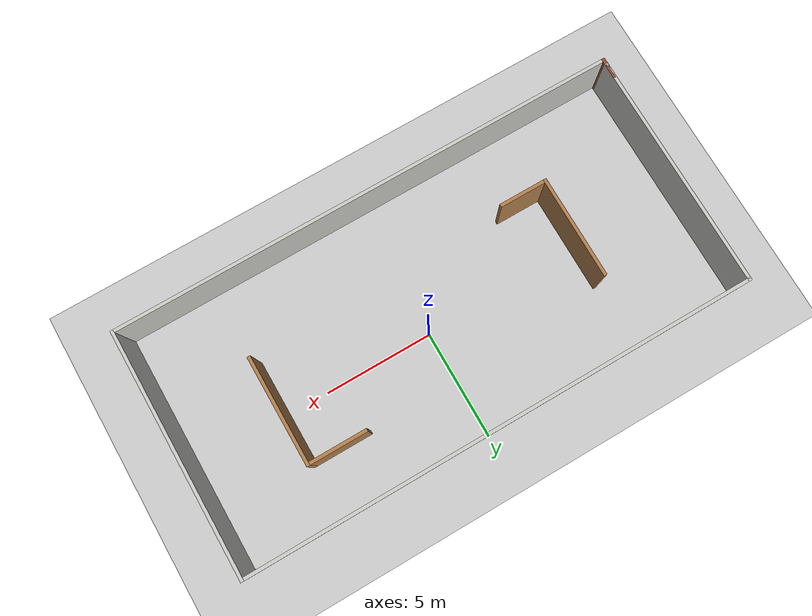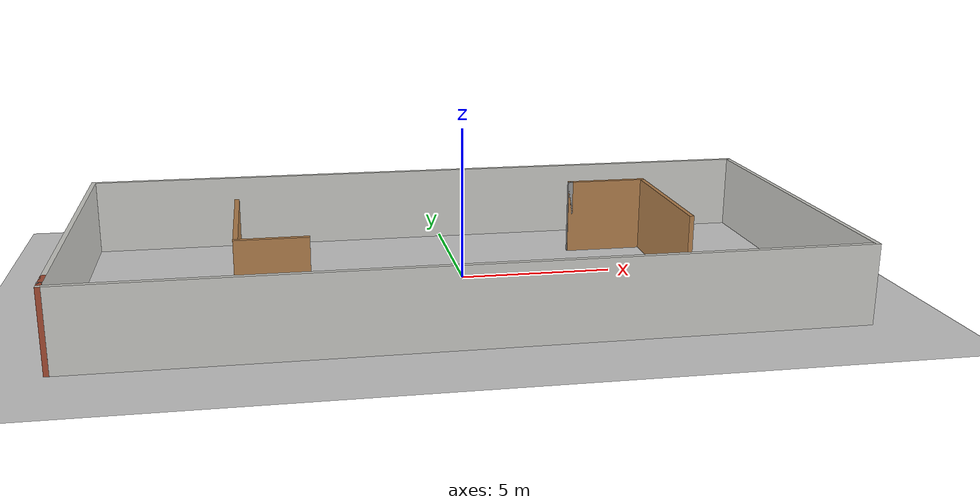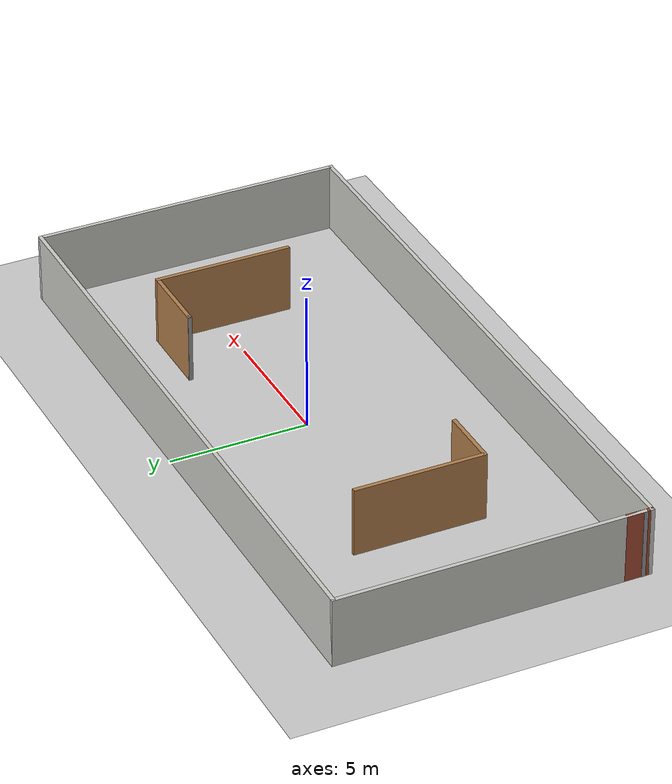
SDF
<sdf version="1.6">
 <world name="default">
  <light name="sun" type="directional">
   <pose>0 0 10 0 -0 0</pose>
   <diffuse>0.8 0.8 0.8 1</diffuse>
   <specular>0.2 0.2 0.2 1</specular>
   <attenuation>
    <range>1000</range>
    <constant>0.9</constant>
    <linear>0.01</linear>
    <quadratic>0.001</quadratic>
   </attenuation>
   <direction>-0.5 0.1 -0.9</direction>
  </light>
  <model name="ground_plane">
   <static>1</static>
   <link name="link">
    <collision name="collision">
     <geometry><plane><normal>0 0 1</normal><size>100 100</size></plane></geometry>
     <surface>
      <contact><collide_bitmask>65535</collide_bitmask></contact>
      <friction><ode><mu>100</mu><mu2>50</mu2></ode></friction>
     </surface>
    </collision>
    <visual name="visual">
     <cast_shadows>0</cast_shadows>
     <geometry><plane><normal>0 0 1</normal><size>100 100</size></plane></geometry>
     <material>
      <script><uri>file://media/materials/scripts/gazebo.material</uri><name>Gazebo/Grey</name></script>
     </material>
    </visual>
   </link>
  </model>
  <gravity>0 0 -9.8</gravity>
  <magnetic_field>6e-06 2.3e-05 -4.2e-05</magnetic_field>
  <atmosphere type="adiabatic"/>
  <physics name="default_physics" default="0" type="ode">
   <max_step_size>0.001</max_step_size>
   <real_time_factor>1</real_time_factor>
   <real_time_update_rate>1000</real_time_update_rate>
  </physics>
  <scene><ambient>0.4 0.4 0.4 1</ambient><background>0.7 0.7 0.7 1</background><shadows>1</shadows></scene>
  <audio><device>default</device></audio>
  <spherical_coordinates>
   <surface_model>EARTH_WGS84</surface_model>
   <latitude_deg>0</latitude_deg>
   <longitude_deg>0</longitude_deg>
   <elevation>0</elevation>
   <heading_deg>0</heading_deg>
  </spherical_coordinates>
  <model name="room">
   <pose>-0.559884 -0.644315 0 0 -0 0</pose>
   <link name="Wall_0">
    <collision name="Wall_0_Collision">
     <geometry><box><size>0.16 0.15 2.5</size></box></geometry>
     <pose>0 0 1.25 0 -0 0</pose>
    </collision>
    <visual name="Wall_0_Visual">
     <pose>0 0 1.25 0 -0 0</pose>
     <geometry><box><size>0.16 0.15 2.5</size></box></geometry>
     <material>
      <script><uri>file://media/materials/scripts/gazebo.material</uri><name>Gazebo/Grey</name></script>
      <ambient>1 1 1 1</ambient>
     </material>
     <meta><layer>0</layer></meta>
    </visual>
    <pose>-11.675 -5.3 0 0 -0 0</pose>
   </link>
   <link name="Wall_1">
    <collision name="Wall_1_Collision">
     <geometry><box><size>11 0.15 2.5</size></box></geometry>
     <pose>0 0 1.25 0 -0 0</pose>
    </collision>
    <visual name="Wall_1_Visual">
     <pose>0 0 1.25 0 -0 0</pose>
     <geometry><box><size>11 0.15 2.5</size></box></geometry>
     <material>
      <script><uri>file://media/materials/scripts/gazebo.material</uri><name>Gazebo/CeilingTiled</name></script>
      <ambient>1 1 1 1</ambient>
     </material>
     <meta><layer>0</layer></meta>
    </visual>
    <pose>-11.67 0.125 0 0 -0 1.5708</pose>
   </link>
   <link name="Wall_10">
    <collision name="Wall_10_Collision">
     <geometry><box><size>0.16 0.15 2.5</size></box></geometry>
     <pose>0 0 1.25 0 -0 0</pose>
    </collision>
    <visual name="Wall_10_Visual">
     <pose>0 0 1.25 0 -0 0</pose>
     <geometry><box><size>0.16 0.15 2.5</size></box></geometry>
     <material>
      <script><uri>file://media/materials/scripts/gazebo.material</uri><name>Gazebo/Grey</name></script>
      <ambient>1 1 1 1</ambient>
     </material>
     <meta><layer>0</layer></meta>
    </visual>
    <pose>4.81447 3.00626 0 0 -0 0</pose>
   </link>
   <link name="Wall_11">
    <collision name="Wall_11_Collision">
     <geometry><box><size>2.75 0.15 2.5</size></box></geometry>
     <pose>0 0 1.25 0 -0 0</pose>
    </collision>
    <visual name="Wall_11_Visual">
     <pose>0 0 1.25 0 -0 0</pose>
     <geometry><box><size>2.75 0.15 2.5</size></box></geometry>
     <material>
      <script><uri>file://media/materials/scripts/gazebo.material</uri><name>Gazebo/Wood</name></script>
      <ambient>1 0.764706 0.305882 1</ambient>
     </material>
     <meta><layer>0</layer></meta>
    </visual>
    <pose>6.11947 3.00626 0 0 -0 0</pose>
   </link>
   <link name="Wall_12">
    <collision name="Wall_12_Collision">
     <geometry><box><size>5 0.15 2.5</size></box></geometry>
     <pose>0 0 1.25 0 -0 0</pose>
    </collision>
    <visual name="Wall_12_Visual">
     <pose>0 0 1.25 0 -0 0</pose>
     <geometry><box><size>5 0.15 2.5</size></box></geometry>
     <material>
      <script><uri>file://media/materials/scripts/gazebo.material</uri><name>Gazebo/Wood</name></script>
      <ambient>1 0.764706 0.305882 1</ambient>
     </material>
     <meta><layer>0</layer></meta>
    </visual>
    <pose>7.41947 0.581263 0 0 -0 -1.5708</pose>
   </link>
   <link name="Wall_2">
    <collision name="Wall_2_Collision">
     <geometry><box><size>23.5 0.15 2.5</size></box></geometry>
     <pose>0 0 1.25 0 -0 0</pose>
    </collision>
    <visual name="Wall_2_Visual">
     <pose>0 0 1.25 0 -0 0</pose>
     <geometry><box><size>23.5 0.15 2.5</size></box></geometry>
     <material>
      <script><uri>file://media/materials/scripts/gazebo.material</uri><name>Gazebo/CeilingTiled</name></script>
      <ambient>1 1 1 1</ambient>
     </material>
     <meta><layer>0</layer></meta>
    </visual>
    <pose>0.005 5.55 0 0 -0 0</pose>
   </link>
   <link name="Wall_3">
    <collision name="Wall_3_Collision">
     <geometry><box><size>11.25 0.15 2.5</size></box></geometry>
     <pose>0 0 1.25 0 -0 0</pose>
    </collision>
    <visual name="Wall_3_Visual">
     <pose>0 0 1.25 0 -0 0</pose>
     <geometry><box><size>11.25 0.15 2.5</size></box></geometry>
     <material>
      <script><uri>file://media/materials/scripts/gazebo.material</uri><name>Gazebo/CeilingTiled</name></script>
      <ambient>1 1 1 1</ambient>
     </material>
     <meta><layer>0</layer></meta>
    </visual>
    <pose>11.68 -0 0 0 -0 -1.5708</pose>
   </link>
   <link name="Wall_4">
    <collision name="Wall_4_Collision">
     <geometry><box><size>23.5 0.15 2.5</size></box></geometry>
     <pose>0 0 1.25 0 -0 0</pose>
    </collision>
    <visual name="Wall_4_Visual">
     <pose>0 0 1.25 0 -0 0</pose>
     <geometry><box><size>23.5 0.15 2.5</size></box></geometry>
     <material>
      <script><uri>file://media/materials/scripts/gazebo.material</uri><name>Gazebo/CeilingTiled</name></script>
      <ambient>1 1 1 1</ambient>
     </material>
     <meta><layer>0</layer></meta>
    </visual>
    <pose>0.005 -5.55 0 0 -0 3.14159</pose>
   </link>
   <link name="Wall_5">
    <collision name="Wall_5_Collision">
     <geometry><box><size>1 0.15 2.5</size></box></geometry>
     <pose>0 0 1.25 0 -0 0</pose>
    </collision>
    <visual name="Wall_5_Visual">
     <pose>0 0 1.25 0 -0 0</pose>
     <geometry><box><size>1 0.15 2.5</size></box></geometry>
     <material>
      <script><uri>file://media/materials/scripts/gazebo.material</uri><name>Gazebo/Bricks</name></script>
      <ambient>1 1 1 1</ambient>
     </material>
     <meta><layer>0</layer></meta>
    </visual>
    <pose>-11.67 -5.125 0 0 -0 1.5708</pose>
   </link>
   <link name="Wall_7">
    <collision name="Wall_7_Collision">
     <geometry><box><size>4.75 0.15 2.5</size></box></geometry>
     <pose>0 0 1.25 0 -0 0</pose>
    </collision>
    <visual name="Wall_7_Visual">
     <pose>0 0 1.25 0 -0 0</pose>
     <geometry><box><size>4.75 0.15 2.5</size></box></geometry>
     <material>
      <script><uri>file://media/materials/scripts/gazebo.material</uri><name>Gazebo/Wood</name></script>
      <ambient>1 0.764706 0.305882 1</ambient>
     </material>
     <meta><layer>0</layer></meta>
    </visual>
    <pose>-6.69624 0.090984 0 0 -0 -1.5708</pose>
   </link>
   <link name="Wall_8">
    <collision name="Wall_8_Collision">
     <geometry><box><size>2.25 0.15 2.5</size></box></geometry>
     <pose>0 0 1.25 0 -0 0</pose>
    </collision>
    <visual name="Wall_8_Visual">
     <pose>0 0 1.25 0 -0 0</pose>
     <geometry><box><size>2.25 0.15 2.5</size></box></geometry>
     <material>
      <script><uri>file://media/materials/scripts/gazebo.material</uri><name>Gazebo/Wood</name></script>
      <ambient>1 0.764706 0.305882 1</ambient>
     </material>
     <meta><layer>0</layer></meta>
    </visual>
    <pose>-5.64624 -2.20902 0 0 -0 0</pose>
   </link>
   <static>1</static>
  </model>
 </world>
</sdf>
